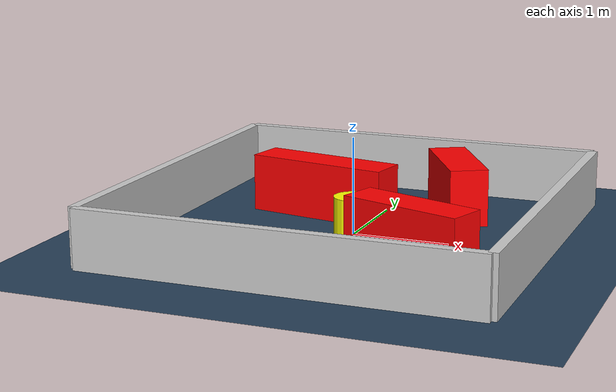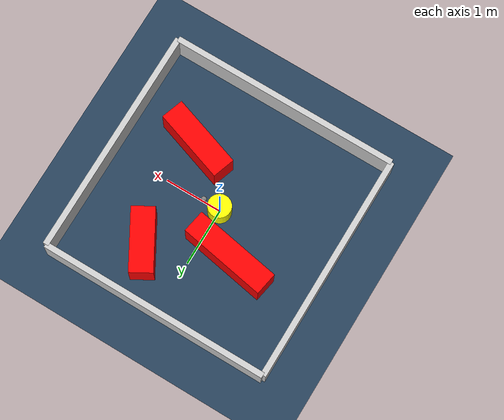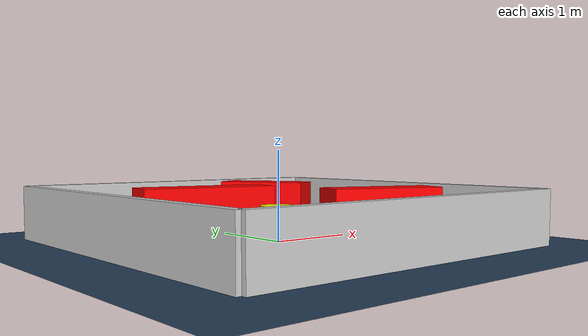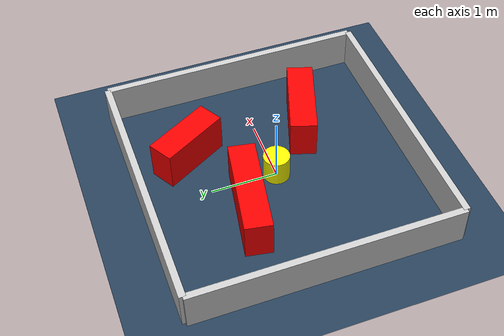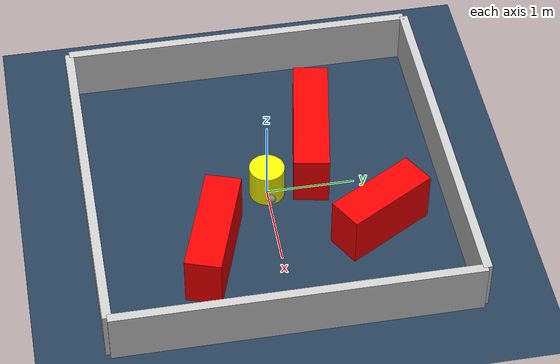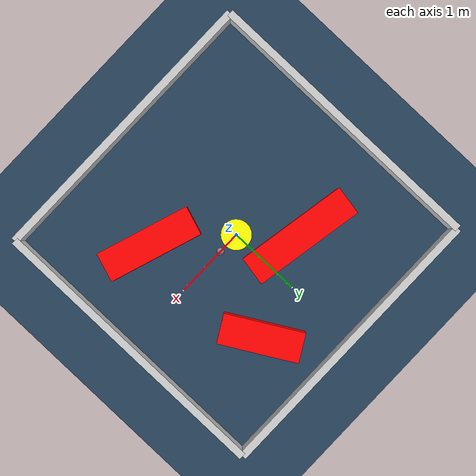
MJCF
<?xml version="1.0" ?>
<mujoco model="generated_environment">
  <option timestep="0.01" integrator="RK4" cone="elliptic"/>
  <default>
    <geom density="1"/>
  </default>
  <asset>
    <texture builtin="gradient" height="3072" rgb1="0.3 0.5 0.7" rgb2="0 0 0" type="skybox" width="512"/>
    <texture builtin="checker" height="300" mark="edge" markrgb="0.8 0.8 0.8" name="groundplane" rgb1="0.2 0.3 0.4" rgb2="0.1 0.2 0.3" type="2d" width="300"/>
    <material name="groundplane" reflectance="0.2" texrepeat="5 5" texture="groundplane" texuniform="true"/>
    <material name="robot" rgba="0.0 1.0 0.0 1"/>
  </asset>
  <worldbody>
    <light dir="0 0 -1" directional="true" pos="0 0 1.5"/>
    <geom condim="4" friction="1.0 0.005 0.001" material="groundplane" name="floor" size="0 0 0.05" type="plane"/>
    <body name="walls">
      <geom name="wall_1" condim="4" pos="-2.0 0.0 0.3" rgba="0.800000011920929 0.800000011920929 0.800000011920929 1.0" size="0.05 2.0 0.3" type="box"/>
      <geom name="wall_2" condim="4" pos="2.0 0.0 0.3" rgba="0.800000011920929 0.800000011920929 0.800000011920929 1.0" size="0.05 2.0 0.3" type="box"/>
      <geom name="wall_3" condim="4" pos="0.0 -2.0 0.3" rgba="0.800000011920929 0.800000011920929 0.800000011920929 1.0" size="2.0 0.05 0.3" type="box"/>
      <geom name="wall_4" condim="4" pos="0.0 2.0 0.3" rgba="0.800000011920929 0.800000011920929 0.800000011920929 1.0" size="2.0 0.05 0.3" type="box"/>
    </body>
    <body name="robot">
      <joint name="joint_x" type="slide" pos="0 0 0" axis="1 0 0"/>
      <joint name="joint_y" type="slide" pos="0 0 0" axis="0 1 0"/>
      <geom name="robot" type="sphere" pos="0.3 0.0 0.2" size="0.05" mass="5." friction="1.0 0.005 0.0001" condim="4" rgba="0.5 0.5 0.5 1.0"/>
      <site name="sensor_ball"/>
    </body>
    <body name="obstacle_movable_1">
      <geom name="obstacle_movable_1" condim="4" pos="0.0 0.0 0.2" euler="0 0 0.0" friction="1.0 0.005 0.001" rgba="1.0 1.0 0.0 1.0" size="0.2 0.2 0.0" type="cylinder" mass="0.1"/>
      <joint type="free"/>
    </body>
    <body name="obstacle_2_static">
      <geom name="obstacle_2_static" condim="4" pos="-0.5499896332437754 0.6033987548797575 0.3" euler="0 0 169.84687384781185" friction="1.0 0.005 0.001" rgba="1 0 0 1" size="0.7659372732240783 0.2 0.3" type="box"/>
    </body>
    <body name="obstacle_3_static">
      <geom name="obstacle_3_static" condim="4" pos="0.7426171963086592 1.1387888602816234 0.3" euler="0 0 119.79174102670584" friction="1.0 0.005 0.001" rgba="1 0 0 1" size="0.5398335903605759 0.2 0.3" type="box"/>
    </body>
    <body name="obstacle_4_static">
      <geom name="obstacle_4_static" condim="4" pos="0.8530069189634744 -0.7290137292637846 0.3" euler="0 0 341.37879190904357" friction="1.0 0.005 0.001" rgba="1 0 0 1" size="0.64659908709252 0.2 0.3" type="box"/>
    </body>
  </worldbody>
  <actuator>
    <motor name="actuator_x" joint="joint_x" gear="1" ctrlrange="-1 1"/>
    <motor name="actuator_y" joint="joint_y" gear="1" ctrlrange="-1 1"/>
  </actuator>
</mujoco>
